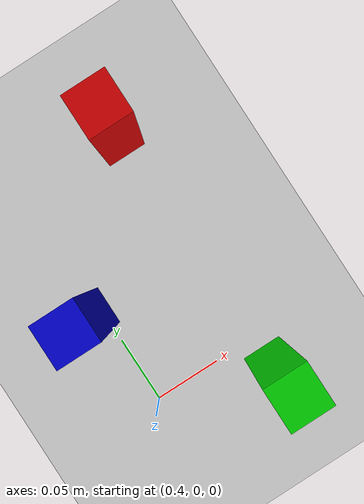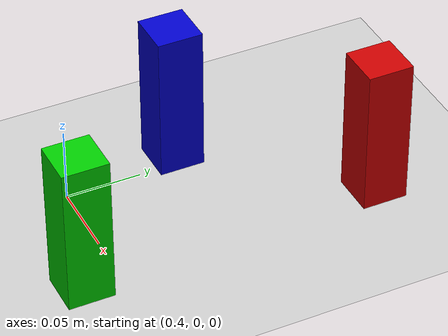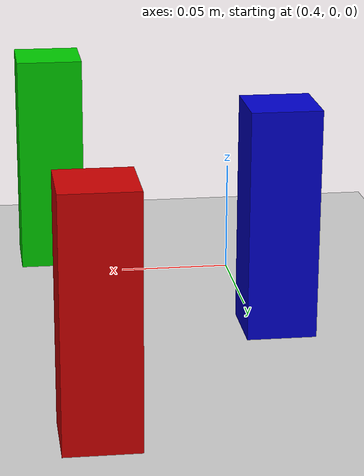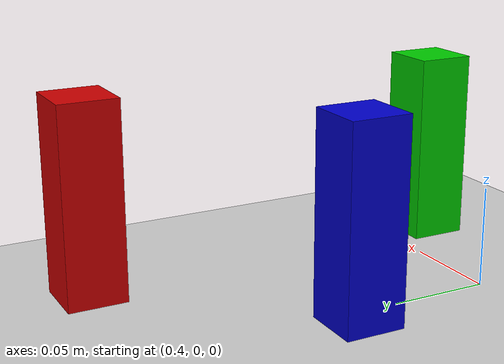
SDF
<?xml version="1.0" ?>
<sdf version="1.4">
  <world name="default">
    <include>
      <uri>model://ground_plane</uri>
    </include>
    <include>
      <uri>model://sun</uri>
    </include>
    <model name="blue_target">
      <pose>0.3910664084153384 0.0771657026449518 0.05 0 0 0</pose>
      <static>true</static>
      <link name="link">
        <inertial>
          <mass>1.0</mass>
          <inertia> <!-- inertias are tricky to compute -->
            <!-- http://gazebosim.org/tutorials?tut=inertia&cat=build_robot -->
            <ixx>0.021</ixx>       <!-- for a box: ixx = 0.083 * mass * (y*y + z*z) -->
            <ixy>0.0</ixy>         <!-- for a box: ixy = 0 -->
            <ixz>0.0</ixz>         <!-- for a box: ixz = 0 -->
            <iyy>0.021</iyy>       <!-- for a box: iyy = 0.083 * mass * (x*x + z*z) -->
            <iyz>0.0</iyz>         <!-- for a box: iyz = 0 -->
            <izz>0.0004</izz>       <!-- for a box: izz = 0.083 * mass * (x*x + y*y) -->
          </inertia>
        </inertial>
        <collision name="collision">
          <geometry>
            <box>
              <size>.03 .03 .1</size>
            </box>
          </geometry>
        </collision>
        <visual name="visual">
          <geometry>
            <box>
              <size>.03 .03 .1</size>
            </box>
          </geometry>
          <material> <!-- Wheel material -->
            <ambient>0 0 1 1</ambient>
            <diffuse>0 0 0.8 1</diffuse>
            <specular>0 0 0 0</specular>
            <emissive>0 0 0 1</emissive>
          </material> <!-- End wheel material -->
        </visual>
      </link>
    </model>
    <model name="red_target">
      <pose>0.47700674557117423 0.17651810850942137 0.05 0 0 0</pose>
      <static>true</static>
      <link name="link">
        <inertial>
          <mass>1.0</mass>
          <inertia> <!-- inertias are tricky to compute -->
            <!-- http://gazebosim.org/tutorials?tut=inertia&cat=build_robot -->
            <ixx>0.021</ixx>       <!-- for a box: ixx = 0.083 * mass * (y*y + z*z) -->
            <ixy>0.0</ixy>         <!-- for a box: ixy = 0 -->
            <ixz>0.0</ixz>         <!-- for a box: ixz = 0 -->
            <iyy>0.021</iyy>       <!-- for a box: iyy = 0.083 * mass * (x*x + z*z) -->
            <iyz>0.0</iyz>         <!-- for a box: iyz = 0 -->
            <izz>0.0004</izz>       <!-- for a box: izz = 0.083 * mass * (x*x + y*y) -->
          </inertia>
        </inertial>
        <collision name="collision">
          <geometry>
            <box>
              <size>.03 .03 .10</size>
            </box>
          </geometry>
        </collision>
        <visual name="visual">
          <geometry>
            <box>
              <size>.03 .03 .10</size>
            </box>
          </geometry>
          <material> <!-- Wheel material -->
            <ambient>1 0 0 1</ambient>
            <diffuse>0.8 0 0 1</diffuse>
            <specular>0 0 0 0</specular>
            <emissive>0 0 0 1</emissive>
          </material> <!-- End wheel material -->
        </visual>
      </link>
    </model>
    <model name="green_target">
      <pose>0.48250693780844245 -0.02465194585677113 0.05 0 0 0</pose>
      <static>true</static>
      <link name="link">
        <inertial>
          <mass>1.0</mass>
          <inertia> <!-- inertias are tricky to compute -->
            <!-- http://gazebosim.org/tutorials?tut=inertia&cat=build_robot -->
            <ixx>0.021</ixx>       <!-- for a box: ixx = 0.083 * mass * (y*y + z*z) -->
            <ixy>0.0</ixy>         <!-- for a box: ixy = 0 -->
            <ixz>0.0</ixz>         <!-- for a box: ixz = 0 -->
            <iyy>0.021</iyy>       <!-- for a box: iyy = 0.083 * mass * (x*x + z*z) -->
            <iyz>0.0</iyz>         <!-- for a box: iyz = 0 -->
            <izz>0.0004</izz>       <!-- for a box: izz = 0.083 * mass * (x*x + y*y) -->
          </inertia>
        </inertial>
        <collision name="collision">
          <geometry>
            <box>
              <size>.03 .03 .1</size>
            </box>
          </geometry>
        </collision>
        <visual name="visual">
          <geometry>
            <box>
              <size>.03 .03 .1</size>
            </box>
          </geometry>
          <material> <!-- Wheel material -->
            <ambient>0 1 0 1</ambient>
            <diffuse>0 0.8 0 1</diffuse>
            <specular>0 0 0 0</specular>
            <emissive>0 0 0 1</emissive>
          </material> <!-- End wheel material -->
        </visual>
      </link>
    </model>
    <model name='camera'>
      <static>true</static>
      <pose frame=''>-0.050861 1.34756 0.496091 0 0.163643 -1.36299</pose>
      <link name='link'>
        <sensor name='my_camera' type='camera'>
          <camera>
            <save enabled="true">
              <path>/tmp/camera_save_tutorial</path>
            </save>
            <image>
              <width>1920</width>
              <height>1080</height>
            </image>
          </camera>
          <always_on>1</always_on>
          <update_rate>30</update_rate>
        </sensor>
      </link>
    </model>
    <gui fullscreen='0'>
      <camera name='user_camera'>
        <pose frame=''>-0.050861 1.34756 0.496091 0 0.163643 -1.36299</pose>
        <view_controller>orbit</view_controller>
        <projection_type>perspective</projection_type>
      </camera>
    </gui>
  </world>
</sdf>
